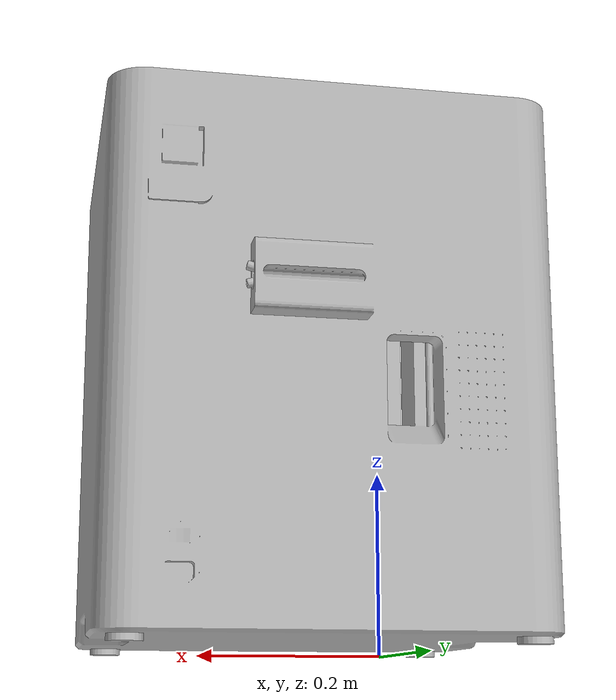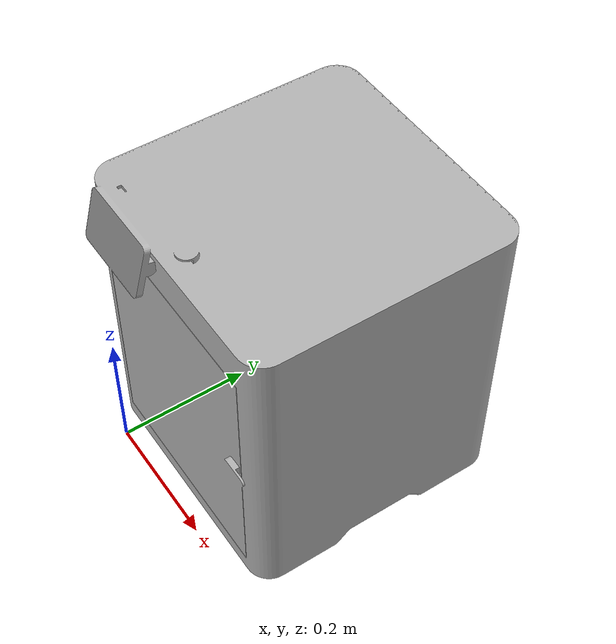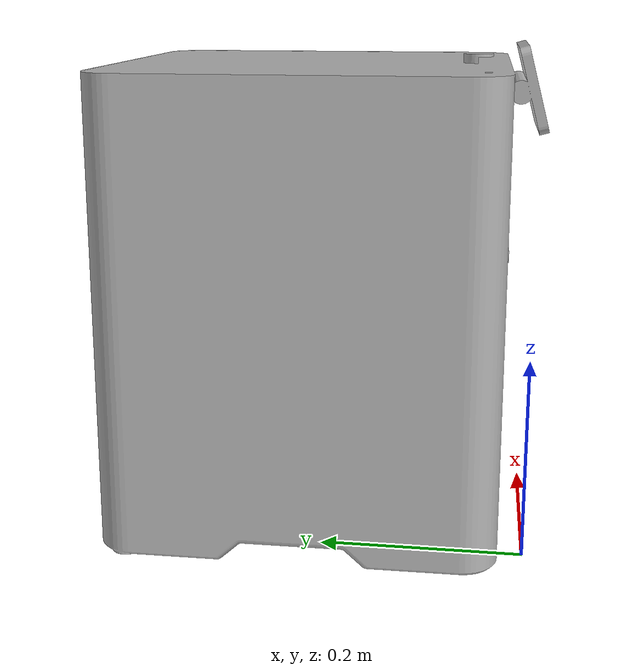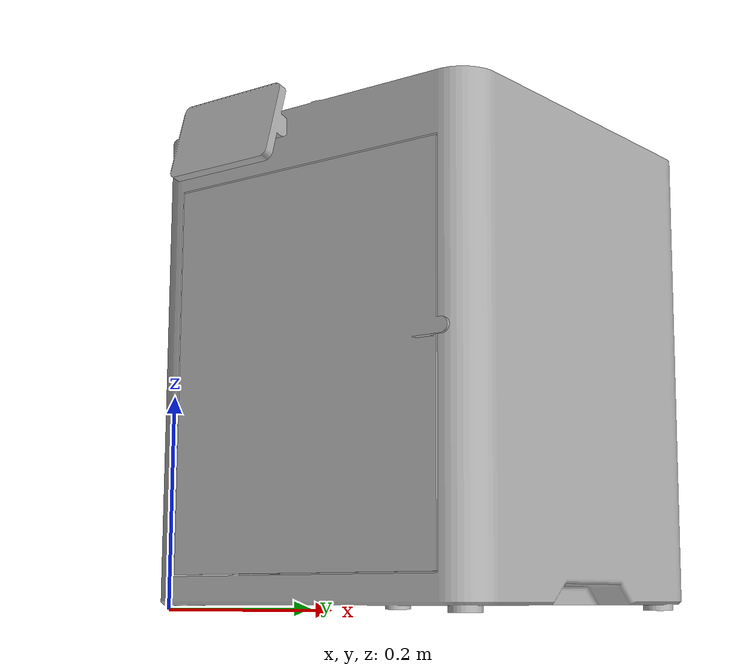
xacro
<?xml version="1.0" ?>
<robot name="BAMBULAB_P2S" xmlns:xacro="http://www.ros.org/wiki/xacro">

<xacro:include filename="$(find BAMBULAB_P2S_description)/urdf/materials.xacro" />
<xacro:include filename="$(find BAMBULAB_P2S_description)/urdf/BAMBULAB_P2S.trans" />
<xacro:include filename="$(find BAMBULAB_P2S_description)/urdf/BAMBULAB_P2S.gazebo" />
<link name="base_link">
  <inertial>
    <origin xyz="0.21251632537877285 0.2681457970411163 0.30367863645273874" rpy="0 0 0"/>
    <mass value="144.76072983211262"/>
    <inertia ixx="6.607565" iyy="7.040119" izz="5.4012" ixy="-0.029571" iyz="0.186731" ixz="0.015142"/>
  </inertial>
  <visual>
    <origin xyz="0 0 0" rpy="0 0 0"/>
    <geometry>
      <mesh filename="package://BAMBULAB_P2S_description/meshes/base_link.stl" scale="0.001 0.001 0.001"/>
    </geometry>
    <material name="silver"/>
  </visual>
  <collision>
    <origin xyz="0 0 0" rpy="0 0 0"/>
    <geometry>
      <mesh filename="package://BAMBULAB_P2S_description/meshes/base_link.stl" scale="0.001 0.001 0.001"/>
    </geometry>
  </collision>
</link>

<link name="Z-bed_1">
  <inertial>
    <origin xyz="0.08596271129982927 0.0918236657916594 -0.05094513028013968" rpy="0 0 0"/>
    <mass value="10.019848039853946"/>
    <inertia ixx="0.064602" iyy="0.080198" izz="0.144424" ixy="-8.3e-05" iyz="0.0" ixz="0.0"/>
  </inertial>
  <visual>
    <origin xyz="-0.126543 -0.173367 -0.157117" rpy="0 0 0"/>
    <geometry>
      <mesh filename="package://BAMBULAB_P2S_description/meshes/Z-bed_1.stl" scale="0.001 0.001 0.001"/>
    </geometry>
    <material name="silver"/>
  </visual>
  <collision>
    <origin xyz="-0.126543 -0.173367 -0.157117" rpy="0 0 0"/>
    <geometry>
      <mesh filename="package://BAMBULAB_P2S_description/meshes/Z-bed_1.stl" scale="0.001 0.001 0.001"/>
    </geometry>
  </collision>
</link>

<link name="Y-axis_1">
  <inertial>
    <origin xyz="0.062419804737599976 -0.05776411722454011 -0.07414777976544817" rpy="0 0 0"/>
    <mass value="1.2845247547395635"/>
    <inertia ixx="0.000542" iyy="0.022739" izz="0.022652" ixy="0.0" iyz="-0.0" ixz="-0.0"/>
  </inertial>
  <visual>
    <origin xyz="-0.15016 -0.450867 -0.554722" rpy="0 0 0"/>
    <geometry>
      <mesh filename="package://BAMBULAB_P2S_description/meshes/Y-axis_1.stl" scale="0.001 0.001 0.001"/>
    </geometry>
    <material name="silver"/>
  </visual>
  <collision>
    <origin xyz="-0.15016 -0.450867 -0.554722" rpy="0 0 0"/>
    <geometry>
      <mesh filename="package://BAMBULAB_P2S_description/meshes/Y-axis_1.stl" scale="0.001 0.001 0.001"/>
    </geometry>
  </collision>
</link>

<link name="X-axis_nozzle_1">
  <inertial>
    <origin xyz="0.01995246450171534 -0.014186409462614735 -0.02101543607495132" rpy="0 0 0"/>
    <mass value="0.675060661578604"/>
    <inertia ixx="0.00026" iyy="0.000242" izz="0.000193" ixy="-0.0" iyz="-6e-06" ixz="-1e-06"/>
  </inertial>
  <visual>
    <origin xyz="-0.08758 -0.393103 -0.501277" rpy="0 0 0"/>
    <geometry>
      <mesh filename="package://BAMBULAB_P2S_description/meshes/X-axis_nozzle_1.stl" scale="0.001 0.001 0.001"/>
    </geometry>
    <material name="silver"/>
  </visual>
  <collision>
    <origin xyz="-0.08758 -0.393103 -0.501277" rpy="0 0 0"/>
    <geometry>
      <mesh filename="package://BAMBULAB_P2S_description/meshes/X-axis_nozzle_1.stl" scale="0.001 0.001 0.001"/>
    </geometry>
  </collision>
</link>

<link name="Door_1">
  <inertial>
    <origin xyz="0.03 -0.03 0" rpy="0 0 0"/>
    <mass value="1.8912702022608048"/>
    <inertia ixx="0.02213" iyy="0.03801" izz="0.015883" ixy="2.6e-05" iyz="3e-06" ixz="-8.5e-05"/>
  </inertial>
  <visual>
    <origin xyz="0.03 -0.03 0" rpy="0 0 0"/>
    <geometry>
      <mesh filename="package://BAMBULAB_P2S_description/meshes/Door_1.stl" scale="0.001 0.001 0.001"/>
    </geometry>
    <material name="silver"/>
  </visual>
  <collision>
    <origin xyz="0.03 -0.03 0" rpy="0 0 0"/>
    <geometry>
      <mesh filename="package://BAMBULAB_P2S_description/meshes/Door_1.stl" scale="0.001 0.001 0.001"/>
    </geometry>
  </collision>
</link>

<joint name="Z-axis" type="prismatic">
  <origin xyz="0.126543 0.173367 0.157117" rpy="0 0 0"/>
  <parent link="base_link"/>
  <child link="Z-bed_1"/>
  <axis xyz="-0.0 -0.0 -1.0"/>
  <limit upper="0.0" lower="-0.31" effort="100" velocity="100"/>
</joint>

<joint name="Y-axis" type="prismatic">
  <origin xyz="0.15016 0.450867 0.554722" rpy="0 0 0"/>
  <parent link="base_link"/>
  <child link="Y-axis_1"/>
  <axis xyz="0.0 1.0 0.0"/>
  <limit upper="0.0" lower="-0.25" effort="100" velocity="100"/>
</joint>

<joint name="X-axis" type="prismatic">
  <origin xyz="-0.06258 -0.057764 -0.053445" rpy="0 0 0"/>
  <parent link="Y-axis_1"/>
  <child link="X-axis_nozzle_1"/>
  <axis xyz="-1.0 0.0 -0.0"/>
  <limit upper="0.0" lower="-0.21" effort="100" velocity="100"/>
</joint>

<joint name="Revolute 8" type="revolute">
  <origin xyz="-0.03 0.03 0" rpy="0 0 0"/>
  <parent link="base_link"/>
  <child link="Door_1"/>
  <axis xyz="-0.0 -0.0 -1.0"/>
  <limit upper="3.141593" lower="0.0" effort="100" velocity="100"/>
</joint>

</robot>

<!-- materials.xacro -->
<robot name="BAMBULAB_P2S" xmlns:xacro="http://www.ros.org/wiki/xacro" >

<material name="silver">
  <color rgba="0.700 0.700 0.700 1.000"/>
</material>

</robot>

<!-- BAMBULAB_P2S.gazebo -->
<robot name="BAMBULAB_P2S" xmlns:xacro="http://www.ros.org/wiki/xacro" >

<xacro:property name="body_color" value="Gazebo/Silver" />

<gazebo>
  <plugin name="control" filename="libgazebo_ros_control.so"/>
</gazebo>
<gazebo reference="base_link">
  <material>${body_color}</material>
  <mu1>0.2</mu1>
  <mu2>0.2</mu2>
  <selfCollide>true</selfCollide>
  <gravity>true</gravity>
</gazebo>

<gazebo reference="Z-bed_1">
  <material>${body_color}</material>
  <mu1>0.2</mu1>
  <mu2>0.2</mu2>
  <selfCollide>true</selfCollide>
</gazebo>

<gazebo reference="Y-axis_1">
  <material>${body_color}</material>
  <mu1>0.2</mu1>
  <mu2>0.2</mu2>
  <selfCollide>true</selfCollide>
</gazebo>

<gazebo reference="X-axis_nozzle_1">
  <material>${body_color}</material>
  <mu1>0.2</mu1>
  <mu2>0.2</mu2>
  <selfCollide>true</selfCollide>
</gazebo>

<gazebo reference="Door_1">
  <material>${body_color}</material>
  <mu1>0.2</mu1>
  <mu2>0.2</mu2>
  <selfCollide>true</selfCollide>
</gazebo>

</robot>
